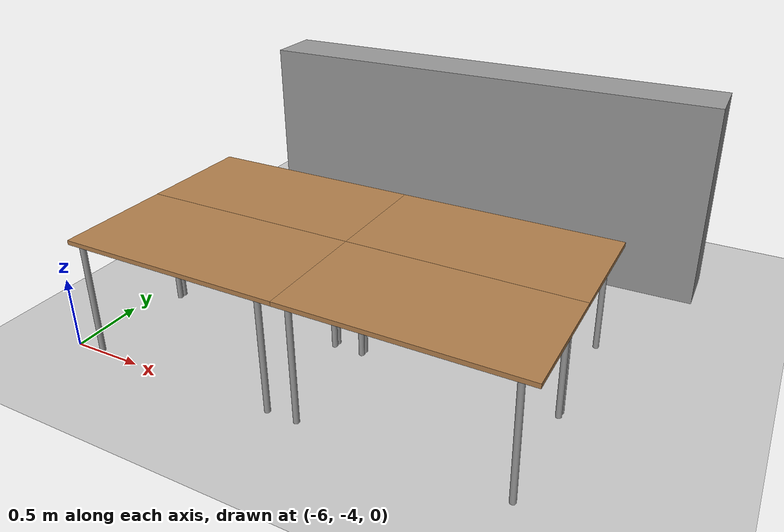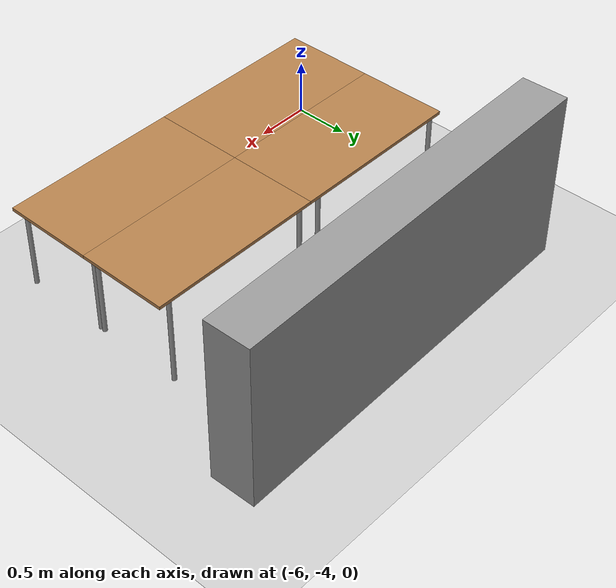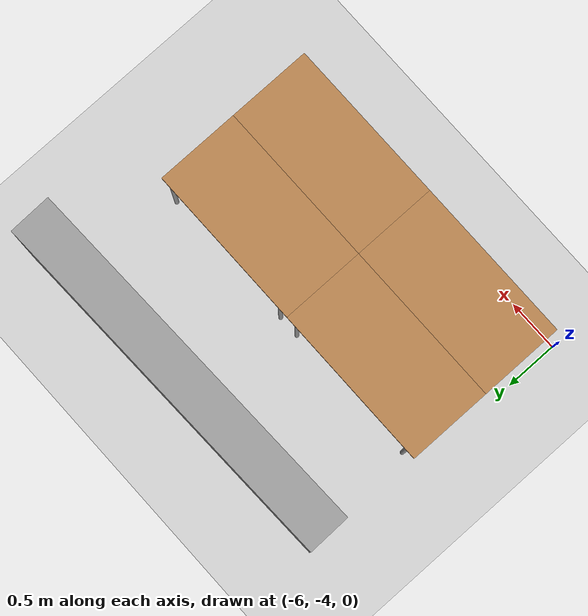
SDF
<sdf version="1.6">
 <world name="default">
  <model name="ground_plane">
   <static>1</static>
   <link name="link">
    <collision name="collision">
     <geometry><plane><normal>0 0 1</normal><size>100 100</size></plane></geometry>
     <surface><friction><ode><mu>100</mu><mu2>50</mu2></ode></friction></surface>
    </collision>
    <visual name="visual">
     <cast_shadows>0</cast_shadows>
     <geometry><plane><normal>0 0 1</normal><size>100 100</size></plane></geometry>
     <material>
      <script><uri>file://media/materials/scripts/gazebo.material</uri><name>Gazebo/Grey</name></script>
     </material>
    </visual>
   </link>
  </model>
  <model name="tablealt_0_clone_24">
   <link name="link">
    <inertial>
     <mass>1</mass>
     <inertia><ixx>1</ixx><ixy>0</ixy><ixz>0</ixz><iyy>1</iyy><iyz>0</iyz><izz>1</izz></inertia>
    </inertial>
    <visual name="back_right_leg">
     <pose>-0.68 -0.38 0.4 0 -0 0</pose>
     <geometry><cylinder><radius>0.02</radius><length>0.8</length></cylinder></geometry>
     <material>
      <script><uri>file://media/materials/scripts/gazebo.material</uri><name>Gazebo/Grey</name></script>
      <shader type="pixel"><normal_map>__default__</normal_map></shader>
      <ambient>0.3 0.3 0.3 1</ambient>
      <diffuse>0.7 0.7 0.7 1</diffuse>
      <specular>0.01 0.01 0.01 1</specular>
      <emissive>0 0 0 1</emissive>
     </material>
    </visual>
    <visual name="back_left_leg">
     <pose>-0.68 0.38 0.4 0 -0 0</pose>
     <geometry><cylinder><radius>0.02</radius><length>0.8</length></cylinder></geometry>
     <material>
      <script><uri>file://media/materials/scripts/gazebo.material</uri><name>Gazebo/Grey</name></script>
      <shader type="pixel"><normal_map>__default__</normal_map></shader>
      <ambient>0.3 0.3 0.3 1</ambient>
      <diffuse>0.7 0.7 0.7 1</diffuse>
      <specular>0.01 0.01 0.01 1</specular>
      <emissive>0 0 0 1</emissive>
     </material>
    </visual>
    <visual name="visual1">
     <pose>0 0 0.8 0 -0 0</pose>
     <geometry><box><size>1.57 0.8 0.03</size></box></geometry>
     <material>
      <script><uri>file://media/materials/scripts/gazebo.material</uri><name>Gazebo/Wood</name></script>
      <shader type="pixel"><normal_map>__default__</normal_map></shader>
      <ambient>0.92 0.92 0.68 1</ambient>
      <diffuse>1 1 1 1</diffuse>
      <specular>0.2 0.2 0.2 1</specular>
      <emissive>0 0 0 1</emissive>
     </material>
    </visual>
    <visual name="front_left_leg">
     <pose>0.68 0.38 0.4 0 -0 0</pose>
     <geometry><cylinder><radius>0.02</radius><length>0.8</length></cylinder></geometry>
     <material>
      <script><uri>file://media/materials/scripts/gazebo.material</uri><name>Gazebo/Grey</name></script>
      <shader type="pixel"><normal_map>__default__</normal_map></shader>
      <ambient>0.3 0.3 0.3 1</ambient>
      <diffuse>0.7 0.7 0.7 1</diffuse>
      <specular>0.01 0.01 0.01 1</specular>
      <emissive>0 0 0 1</emissive>
     </material>
    </visual>
    <visual name="front_right_leg">
     <pose>0.68 -0.38 0.4 0 -0 0</pose>
     <geometry><cylinder><radius>0.02</radius><length>0.8</length></cylinder></geometry>
     <material>
      <script><uri>file://media/materials/scripts/gazebo.material</uri><name>Gazebo/Grey</name></script>
      <shader type="pixel"><normal_map>__default__</normal_map></shader>
      <ambient>0.3 0.3 0.3 1</ambient>
      <diffuse>0.7 0.7 0.7 1</diffuse>
      <specular>0.01 0.01 0.01 1</specular>
      <emissive>0 0 0 1</emissive>
     </material>
    </visual>
    <collision name="front_right_leg">
     <pose>0.68 -0.38 0.4 0 -0 0</pose>
     <geometry><cylinder><radius>0.02</radius><length>0.8</length></cylinder></geometry>
     <surface>
      <friction>
       <ode><mu>1</mu><mu2>1</mu2><fdir1>0 0 0</fdir1><slip1>0</slip1><slip2>0</slip2></ode>
       <torsional>
        <coefficient>1</coefficient>
        <patch_radius>0</patch_radius>
        <surface_radius>0</surface_radius>
        <use_patch_radius>1</use_patch_radius>
        <ode><slip>0</slip></ode>
       </torsional>
      </friction>
      <bounce><restitution_coefficient>0</restitution_coefficient><threshold>1e+06</threshold></bounce>
      <contact>
       <collide_without_contact>0</collide_without_contact>
       <collide_without_contact_bitmask>1</collide_without_contact_bitmask>
       <collide_bitmask>1</collide_bitmask>
       <ode>
        <soft_cfm>0</soft_cfm>
        <soft_erp>0.2</soft_erp>
        <kp>1e+13</kp>
        <kd>1</kd>
        <max_vel>0.01</max_vel>
        <min_depth>0</min_depth>
       </ode>
       <bullet>
        <split_impulse>1</split_impulse>
        <split_impulse_penetration_threshold>-0.01</split_impulse_penetration_threshold>
        <soft_cfm>0</soft_cfm>
        <soft_erp>0.2</soft_erp>
        <kp>1e+13</kp>
        <kd>1</kd>
       </bullet>
      </contact>
     </surface>
    </collision>
    <collision name="surface">
     <pose>0 0 0.8 0 -0 0</pose>
     <geometry><box><size>1.5 0.8 0.03</size></box></geometry>
     <surface>
      <friction>
       <ode><mu>0.6</mu><mu2>0.6</mu2><fdir1>0 0 0</fdir1><slip1>0</slip1><slip2>0</slip2></ode>
       <torsional>
        <coefficient>1</coefficient>
        <patch_radius>0</patch_radius>
        <surface_radius>0</surface_radius>
        <use_patch_radius>1</use_patch_radius>
        <ode><slip>0</slip></ode>
       </torsional>
      </friction>
      <bounce><restitution_coefficient>0</restitution_coefficient><threshold>1e+06</threshold></bounce>
      <contact>
       <collide_without_contact>0</collide_without_contact>
       <collide_without_contact_bitmask>1</collide_without_contact_bitmask>
       <collide_bitmask>1</collide_bitmask>
       <ode>
        <soft_cfm>0</soft_cfm>
        <soft_erp>0.2</soft_erp>
        <kp>1e+13</kp>
        <kd>1</kd>
        <max_vel>0.01</max_vel>
        <min_depth>0</min_depth>
       </ode>
       <bullet>
        <split_impulse>1</split_impulse>
        <split_impulse_penetration_threshold>-0.01</split_impulse_penetration_threshold>
        <soft_cfm>0</soft_cfm>
        <soft_erp>0.2</soft_erp>
        <kp>1e+13</kp>
        <kd>1</kd>
       </bullet>
      </contact>
     </surface>
    </collision>
    <collision name="front_left_leg">
     <pose>0.68 0.38 0.4 0 -0 0</pose>
     <geometry><cylinder><radius>0.02</radius><length>0.8</length></cylinder></geometry>
     <surface>
      <friction>
       <ode><mu>1</mu><mu2>1</mu2><fdir1>0 0 0</fdir1><slip1>0</slip1><slip2>0</slip2></ode>
       <torsional>
        <coefficient>1</coefficient>
        <patch_radius>0</patch_radius>
        <surface_radius>0</surface_radius>
        <use_patch_radius>1</use_patch_radius>
        <ode><slip>0</slip></ode>
       </torsional>
      </friction>
      <bounce><restitution_coefficient>0</restitution_coefficient><threshold>1e+06</threshold></bounce>
      <contact>
       <collide_without_contact>0</collide_without_contact>
       <collide_without_contact_bitmask>1</collide_without_contact_bitmask>
       <collide_bitmask>1</collide_bitmask>
       <ode>
        <soft_cfm>0</soft_cfm>
        <soft_erp>0.2</soft_erp>
        <kp>1e+13</kp>
        <kd>1</kd>
        <max_vel>0.01</max_vel>
        <min_depth>0</min_depth>
       </ode>
       <bullet>
        <split_impulse>1</split_impulse>
        <split_impulse_penetration_threshold>-0.01</split_impulse_penetration_threshold>
        <soft_cfm>0</soft_cfm>
        <soft_erp>0.2</soft_erp>
        <kp>1e+13</kp>
        <kd>1</kd>
       </bullet>
      </contact>
     </surface>
    </collision>
    <collision name="back_left_leg">
     <pose>-0.68 0.38 0.4 0 -0 0</pose>
     <geometry><cylinder><radius>0.02</radius><length>0.8</length></cylinder></geometry>
     <surface>
      <friction>
       <ode><mu>1</mu><mu2>1</mu2><fdir1>0 0 0</fdir1><slip1>0</slip1><slip2>0</slip2></ode>
       <torsional>
        <coefficient>1</coefficient>
        <patch_radius>0</patch_radius>
        <surface_radius>0</surface_radius>
        <use_patch_radius>1</use_patch_radius>
        <ode><slip>0</slip></ode>
       </torsional>
      </friction>
      <bounce><restitution_coefficient>0</restitution_coefficient><threshold>1e+06</threshold></bounce>
      <contact>
       <collide_without_contact>0</collide_without_contact>
       <collide_without_contact_bitmask>1</collide_without_contact_bitmask>
       <collide_bitmask>1</collide_bitmask>
       <ode>
        <soft_cfm>0</soft_cfm>
        <soft_erp>0.2</soft_erp>
        <kp>1e+13</kp>
        <kd>1</kd>
        <max_vel>0.01</max_vel>
        <min_depth>0</min_depth>
       </ode>
       <bullet>
        <split_impulse>1</split_impulse>
        <split_impulse_penetration_threshold>-0.01</split_impulse_penetration_threshold>
        <soft_cfm>0</soft_cfm>
        <soft_erp>0.2</soft_erp>
        <kp>1e+13</kp>
        <kd>1</kd>
       </bullet>
      </contact>
     </surface>
    </collision>
    <collision name="back_right_leg">
     <pose>-0.68 -0.38 0.4 0 -0 0</pose>
     <geometry><cylinder><radius>0.02</radius><length>0.8</length></cylinder></geometry>
     <surface>
      <friction>
       <ode><mu>1</mu><mu2>1</mu2><fdir1>0 0 0</fdir1><slip1>0</slip1><slip2>0</slip2></ode>
       <torsional>
        <coefficient>1</coefficient>
        <patch_radius>0</patch_radius>
        <surface_radius>0</surface_radius>
        <use_patch_radius>1</use_patch_radius>
        <ode><slip>0</slip></ode>
       </torsional>
      </friction>
      <bounce><restitution_coefficient>0</restitution_coefficient><threshold>1e+06</threshold></bounce>
      <contact>
       <collide_without_contact>0</collide_without_contact>
       <collide_without_contact_bitmask>1</collide_without_contact_bitmask>
       <collide_bitmask>1</collide_bitmask>
       <ode>
        <soft_cfm>0</soft_cfm>
        <soft_erp>0.2</soft_erp>
        <kp>1e+13</kp>
        <kd>1</kd>
        <max_vel>0.01</max_vel>
        <min_depth>0</min_depth>
       </ode>
       <bullet>
        <split_impulse>1</split_impulse>
        <split_impulse_penetration_threshold>-0.01</split_impulse_penetration_threshold>
        <soft_cfm>0</soft_cfm>
        <soft_erp>0.2</soft_erp>
        <kp>1e+13</kp>
        <kd>1</kd>
       </bullet>
      </contact>
     </surface>
    </collision>
   </link>
   <static>1</static>
   <pose>-5.13 -2.8 0 0 -0 0</pose>
  </model>
  <model name="tablealt_0_clone_25">
   <link name="link">
    <inertial>
     <mass>1</mass>
     <inertia><ixx>1</ixx><ixy>0</ixy><ixz>0</ixz><iyy>1</iyy><iyz>0</iyz><izz>1</izz></inertia>
    </inertial>
    <visual name="back_right_leg">
     <pose>-0.68 -0.38 0.4 0 -0 0</pose>
     <geometry><cylinder><radius>0.02</radius><length>0.8</length></cylinder></geometry>
     <material>
      <script><uri>file://media/materials/scripts/gazebo.material</uri><name>Gazebo/Grey</name></script>
      <shader type="pixel"><normal_map>__default__</normal_map></shader>
      <ambient>0.3 0.3 0.3 1</ambient>
      <diffuse>0.7 0.7 0.7 1</diffuse>
      <specular>0.01 0.01 0.01 1</specular>
      <emissive>0 0 0 1</emissive>
     </material>
    </visual>
    <visual name="back_left_leg">
     <pose>-0.68 0.38 0.4 0 -0 0</pose>
     <geometry><cylinder><radius>0.02</radius><length>0.8</length></cylinder></geometry>
     <material>
      <script><uri>file://media/materials/scripts/gazebo.material</uri><name>Gazebo/Grey</name></script>
      <shader type="pixel"><normal_map>__default__</normal_map></shader>
      <ambient>0.3 0.3 0.3 1</ambient>
      <diffuse>0.7 0.7 0.7 1</diffuse>
      <specular>0.01 0.01 0.01 1</specular>
      <emissive>0 0 0 1</emissive>
     </material>
    </visual>
    <visual name="visual1">
     <pose>0 0 0.8 0 -0 0</pose>
     <geometry><box><size>1.57 0.8 0.03</size></box></geometry>
     <material>
      <script><uri>file://media/materials/scripts/gazebo.material</uri><name>Gazebo/Wood</name></script>
      <shader type="pixel"><normal_map>__default__</normal_map></shader>
      <ambient>0.92 0.92 0.68 1</ambient>
      <diffuse>1 1 1 1</diffuse>
      <specular>0.2 0.2 0.2 1</specular>
      <emissive>0 0 0 1</emissive>
     </material>
    </visual>
    <visual name="front_left_leg">
     <pose>0.68 0.38 0.4 0 -0 0</pose>
     <geometry><cylinder><radius>0.02</radius><length>0.8</length></cylinder></geometry>
     <material>
      <script><uri>file://media/materials/scripts/gazebo.material</uri><name>Gazebo/Grey</name></script>
      <shader type="pixel"><normal_map>__default__</normal_map></shader>
      <ambient>0.3 0.3 0.3 1</ambient>
      <diffuse>0.7 0.7 0.7 1</diffuse>
      <specular>0.01 0.01 0.01 1</specular>
      <emissive>0 0 0 1</emissive>
     </material>
    </visual>
    <visual name="front_right_leg">
     <pose>0.68 -0.38 0.4 0 -0 0</pose>
     <geometry><cylinder><radius>0.02</radius><length>0.8</length></cylinder></geometry>
     <material>
      <script><uri>file://media/materials/scripts/gazebo.material</uri><name>Gazebo/Grey</name></script>
      <shader type="pixel"><normal_map>__default__</normal_map></shader>
      <ambient>0.3 0.3 0.3 1</ambient>
      <diffuse>0.7 0.7 0.7 1</diffuse>
      <specular>0.01 0.01 0.01 1</specular>
      <emissive>0 0 0 1</emissive>
     </material>
    </visual>
    <collision name="front_right_leg">
     <pose>0.68 -0.38 0.4 0 -0 0</pose>
     <geometry><cylinder><radius>0.02</radius><length>0.8</length></cylinder></geometry>
     <surface>
      <friction>
       <ode><mu>1</mu><mu2>1</mu2><fdir1>0 0 0</fdir1><slip1>0</slip1><slip2>0</slip2></ode>
       <torsional>
        <coefficient>1</coefficient>
        <patch_radius>0</patch_radius>
        <surface_radius>0</surface_radius>
        <use_patch_radius>1</use_patch_radius>
        <ode><slip>0</slip></ode>
       </torsional>
      </friction>
      <bounce><restitution_coefficient>0</restitution_coefficient><threshold>1e+06</threshold></bounce>
      <contact>
       <collide_without_contact>0</collide_without_contact>
       <collide_without_contact_bitmask>1</collide_without_contact_bitmask>
       <collide_bitmask>1</collide_bitmask>
       <ode>
        <soft_cfm>0</soft_cfm>
        <soft_erp>0.2</soft_erp>
        <kp>1e+13</kp>
        <kd>1</kd>
        <max_vel>0.01</max_vel>
        <min_depth>0</min_depth>
       </ode>
       <bullet>
        <split_impulse>1</split_impulse>
        <split_impulse_penetration_threshold>-0.01</split_impulse_penetration_threshold>
        <soft_cfm>0</soft_cfm>
        <soft_erp>0.2</soft_erp>
        <kp>1e+13</kp>
        <kd>1</kd>
       </bullet>
      </contact>
     </surface>
    </collision>
    <collision name="surface">
     <pose>0 0 0.8 0 -0 0</pose>
     <geometry><box><size>1.5 0.8 0.03</size></box></geometry>
     <surface>
      <friction>
       <ode><mu>0.6</mu><mu2>0.6</mu2><fdir1>0 0 0</fdir1><slip1>0</slip1><slip2>0</slip2></ode>
       <torsional>
        <coefficient>1</coefficient>
        <patch_radius>0</patch_radius>
        <surface_radius>0</surface_radius>
        <use_patch_radius>1</use_patch_radius>
        <ode><slip>0</slip></ode>
       </torsional>
      </friction>
      <bounce><restitution_coefficient>0</restitution_coefficient><threshold>1e+06</threshold></bounce>
      <contact>
       <collide_without_contact>0</collide_without_contact>
       <collide_without_contact_bitmask>1</collide_without_contact_bitmask>
       <collide_bitmask>1</collide_bitmask>
       <ode>
        <soft_cfm>0</soft_cfm>
        <soft_erp>0.2</soft_erp>
        <kp>1e+13</kp>
        <kd>1</kd>
        <max_vel>0.01</max_vel>
        <min_depth>0</min_depth>
       </ode>
       <bullet>
        <split_impulse>1</split_impulse>
        <split_impulse_penetration_threshold>-0.01</split_impulse_penetration_threshold>
        <soft_cfm>0</soft_cfm>
        <soft_erp>0.2</soft_erp>
        <kp>1e+13</kp>
        <kd>1</kd>
       </bullet>
      </contact>
     </surface>
    </collision>
    <collision name="front_left_leg">
     <pose>0.68 0.38 0.4 0 -0 0</pose>
     <geometry><cylinder><radius>0.02</radius><length>0.8</length></cylinder></geometry>
     <surface>
      <friction>
       <ode><mu>1</mu><mu2>1</mu2><fdir1>0 0 0</fdir1><slip1>0</slip1><slip2>0</slip2></ode>
       <torsional>
        <coefficient>1</coefficient>
        <patch_radius>0</patch_radius>
        <surface_radius>0</surface_radius>
        <use_patch_radius>1</use_patch_radius>
        <ode><slip>0</slip></ode>
       </torsional>
      </friction>
      <bounce><restitution_coefficient>0</restitution_coefficient><threshold>1e+06</threshold></bounce>
      <contact>
       <collide_without_contact>0</collide_without_contact>
       <collide_without_contact_bitmask>1</collide_without_contact_bitmask>
       <collide_bitmask>1</collide_bitmask>
       <ode>
        <soft_cfm>0</soft_cfm>
        <soft_erp>0.2</soft_erp>
        <kp>1e+13</kp>
        <kd>1</kd>
        <max_vel>0.01</max_vel>
        <min_depth>0</min_depth>
       </ode>
       <bullet>
        <split_impulse>1</split_impulse>
        <split_impulse_penetration_threshold>-0.01</split_impulse_penetration_threshold>
        <soft_cfm>0</soft_cfm>
        <soft_erp>0.2</soft_erp>
        <kp>1e+13</kp>
        <kd>1</kd>
       </bullet>
      </contact>
     </surface>
    </collision>
    <collision name="back_left_leg">
     <pose>-0.68 0.38 0.4 0 -0 0</pose>
     <geometry><cylinder><radius>0.02</radius><length>0.8</length></cylinder></geometry>
     <surface>
      <friction>
       <ode><mu>1</mu><mu2>1</mu2><fdir1>0 0 0</fdir1><slip1>0</slip1><slip2>0</slip2></ode>
       <torsional>
        <coefficient>1</coefficient>
        <patch_radius>0</patch_radius>
        <surface_radius>0</surface_radius>
        <use_patch_radius>1</use_patch_radius>
        <ode><slip>0</slip></ode>
       </torsional>
      </friction>
      <bounce><restitution_coefficient>0</restitution_coefficient><threshold>1e+06</threshold></bounce>
      <contact>
       <collide_without_contact>0</collide_without_contact>
       <collide_without_contact_bitmask>1</collide_without_contact_bitmask>
       <collide_bitmask>1</collide_bitmask>
       <ode>
        <soft_cfm>0</soft_cfm>
        <soft_erp>0.2</soft_erp>
        <kp>1e+13</kp>
        <kd>1</kd>
        <max_vel>0.01</max_vel>
        <min_depth>0</min_depth>
       </ode>
       <bullet>
        <split_impulse>1</split_impulse>
        <split_impulse_penetration_threshold>-0.01</split_impulse_penetration_threshold>
        <soft_cfm>0</soft_cfm>
        <soft_erp>0.2</soft_erp>
        <kp>1e+13</kp>
        <kd>1</kd>
       </bullet>
      </contact>
     </surface>
    </collision>
    <collision name="back_right_leg">
     <pose>-0.68 -0.38 0.4 0 -0 0</pose>
     <geometry><cylinder><radius>0.02</radius><length>0.8</length></cylinder></geometry>
     <surface>
      <friction>
       <ode><mu>1</mu><mu2>1</mu2><fdir1>0 0 0</fdir1><slip1>0</slip1><slip2>0</slip2></ode>
       <torsional>
        <coefficient>1</coefficient>
        <patch_radius>0</patch_radius>
        <surface_radius>0</surface_radius>
        <use_patch_radius>1</use_patch_radius>
        <ode><slip>0</slip></ode>
       </torsional>
      </friction>
      <bounce><restitution_coefficient>0</restitution_coefficient><threshold>1e+06</threshold></bounce>
      <contact>
       <collide_without_contact>0</collide_without_contact>
       <collide_without_contact_bitmask>1</collide_without_contact_bitmask>
       <collide_bitmask>1</collide_bitmask>
       <ode>
        <soft_cfm>0</soft_cfm>
        <soft_erp>0.2</soft_erp>
        <kp>1e+13</kp>
        <kd>1</kd>
        <max_vel>0.01</max_vel>
        <min_depth>0</min_depth>
       </ode>
       <bullet>
        <split_impulse>1</split_impulse>
        <split_impulse_penetration_threshold>-0.01</split_impulse_penetration_threshold>
        <soft_cfm>0</soft_cfm>
        <soft_erp>0.2</soft_erp>
        <kp>1e+13</kp>
        <kd>1</kd>
       </bullet>
      </contact>
     </surface>
    </collision>
   </link>
   <static>1</static>
   <pose>-3.56 -2.8 0 0 -0 0</pose>
  </model>
  <model name="tablealt_0_clone_27">
   <link name="link">
    <inertial>
     <mass>1</mass>
     <inertia><ixx>1</ixx><ixy>0</ixy><ixz>0</ixz><iyy>1</iyy><iyz>0</iyz><izz>1</izz></inertia>
    </inertial>
    <visual name="back_right_leg">
     <pose>-0.68 -0.38 0.4 0 -0 0</pose>
     <geometry><cylinder><radius>0.02</radius><length>0.8</length></cylinder></geometry>
     <material>
      <script><uri>file://media/materials/scripts/gazebo.material</uri><name>Gazebo/Grey</name></script>
      <shader type="pixel"><normal_map>__default__</normal_map></shader>
      <ambient>0.3 0.3 0.3 1</ambient>
      <diffuse>0.7 0.7 0.7 1</diffuse>
      <specular>0.01 0.01 0.01 1</specular>
      <emissive>0 0 0 1</emissive>
     </material>
    </visual>
    <visual name="back_left_leg">
     <pose>-0.68 0.38 0.4 0 -0 0</pose>
     <geometry><cylinder><radius>0.02</radius><length>0.8</length></cylinder></geometry>
     <material>
      <script><uri>file://media/materials/scripts/gazebo.material</uri><name>Gazebo/Grey</name></script>
      <shader type="pixel"><normal_map>__default__</normal_map></shader>
      <ambient>0.3 0.3 0.3 1</ambient>
      <diffuse>0.7 0.7 0.7 1</diffuse>
      <specular>0.01 0.01 0.01 1</specular>
      <emissive>0 0 0 1</emissive>
     </material>
    </visual>
    <visual name="visual1">
     <pose>0 0 0.8 0 -0 0</pose>
     <geometry><box><size>1.57 0.8 0.03</size></box></geometry>
     <material>
      <script><uri>file://media/materials/scripts/gazebo.material</uri><name>Gazebo/Wood</name></script>
      <shader type="pixel"><normal_map>__default__</normal_map></shader>
      <ambient>0.92 0.92 0.68 1</ambient>
      <diffuse>1 1 1 1</diffuse>
      <specular>0.2 0.2 0.2 1</specular>
      <emissive>0 0 0 1</emissive>
     </material>
    </visual>
    <visual name="front_left_leg">
     <pose>0.68 0.38 0.4 0 -0 0</pose>
     <geometry><cylinder><radius>0.02</radius><length>0.8</length></cylinder></geometry>
     <material>
      <script><uri>file://media/materials/scripts/gazebo.material</uri><name>Gazebo/Grey</name></script>
      <shader type="pixel"><normal_map>__default__</normal_map></shader>
      <ambient>0.3 0.3 0.3 1</ambient>
      <diffuse>0.7 0.7 0.7 1</diffuse>
      <specular>0.01 0.01 0.01 1</specular>
      <emissive>0 0 0 1</emissive>
     </material>
    </visual>
    <visual name="front_right_leg">
     <pose>0.68 -0.38 0.4 0 -0 0</pose>
     <geometry><cylinder><radius>0.02</radius><length>0.8</length></cylinder></geometry>
     <material>
      <script><uri>file://media/materials/scripts/gazebo.material</uri><name>Gazebo/Grey</name></script>
      <shader type="pixel"><normal_map>__default__</normal_map></shader>
      <ambient>0.3 0.3 0.3 1</ambient>
      <diffuse>0.7 0.7 0.7 1</diffuse>
      <specular>0.01 0.01 0.01 1</specular>
      <emissive>0 0 0 1</emissive>
     </material>
    </visual>
    <collision name="front_right_leg">
     <pose>0.68 -0.38 0.4 0 -0 0</pose>
     <geometry><cylinder><radius>0.02</radius><length>0.8</length></cylinder></geometry>
     <surface>
      <friction>
       <ode><mu>1</mu><mu2>1</mu2><fdir1>0 0 0</fdir1><slip1>0</slip1><slip2>0</slip2></ode>
       <torsional>
        <coefficient>1</coefficient>
        <patch_radius>0</patch_radius>
        <surface_radius>0</surface_radius>
        <use_patch_radius>1</use_patch_radius>
        <ode><slip>0</slip></ode>
       </torsional>
      </friction>
      <bounce><restitution_coefficient>0</restitution_coefficient><threshold>1e+06</threshold></bounce>
      <contact>
       <collide_without_contact>0</collide_without_contact>
       <collide_without_contact_bitmask>1</collide_without_contact_bitmask>
       <collide_bitmask>1</collide_bitmask>
       <ode>
        <soft_cfm>0</soft_cfm>
        <soft_erp>0.2</soft_erp>
        <kp>1e+13</kp>
        <kd>1</kd>
        <max_vel>0.01</max_vel>
        <min_depth>0</min_depth>
       </ode>
       <bullet>
        <split_impulse>1</split_impulse>
        <split_impulse_penetration_threshold>-0.01</split_impulse_penetration_threshold>
        <soft_cfm>0</soft_cfm>
        <soft_erp>0.2</soft_erp>
        <kp>1e+13</kp>
        <kd>1</kd>
       </bullet>
      </contact>
     </surface>
    </collision>
    <collision name="surface">
     <pose>0 0 0.8 0 -0 0</pose>
     <geometry><box><size>1.5 0.8 0.03</size></box></geometry>
     <surface>
      <friction>
       <ode><mu>0.6</mu><mu2>0.6</mu2><fdir1>0 0 0</fdir1><slip1>0</slip1><slip2>0</slip2></ode>
       <torsional>
        <coefficient>1</coefficient>
        <patch_radius>0</patch_radius>
        <surface_radius>0</surface_radius>
        <use_patch_radius>1</use_patch_radius>
        <ode><slip>0</slip></ode>
       </torsional>
      </friction>
      <bounce><restitution_coefficient>0</restitution_coefficient><threshold>1e+06</threshold></bounce>
      <contact>
       <collide_without_contact>0</collide_without_contact>
       <collide_without_contact_bitmask>1</collide_without_contact_bitmask>
       <collide_bitmask>1</collide_bitmask>
       <ode>
        <soft_cfm>0</soft_cfm>
        <soft_erp>0.2</soft_erp>
        <kp>1e+13</kp>
        <kd>1</kd>
        <max_vel>0.01</max_vel>
        <min_depth>0</min_depth>
       </ode>
       <bullet>
        <split_impulse>1</split_impulse>
        <split_impulse_penetration_threshold>-0.01</split_impulse_penetration_threshold>
        <soft_cfm>0</soft_cfm>
        <soft_erp>0.2</soft_erp>
        <kp>1e+13</kp>
        <kd>1</kd>
       </bullet>
      </contact>
     </surface>
    </collision>
    <collision name="front_left_leg">
     <pose>0.68 0.38 0.4 0 -0 0</pose>
     <geometry><cylinder><radius>0.02</radius><length>0.8</length></cylinder></geometry>
     <surface>
      <friction>
       <ode><mu>1</mu><mu2>1</mu2><fdir1>0 0 0</fdir1><slip1>0</slip1><slip2>0</slip2></ode>
       <torsional>
        <coefficient>1</coefficient>
        <patch_radius>0</patch_radius>
        <surface_radius>0</surface_radius>
        <use_patch_radius>1</use_patch_radius>
        <ode><slip>0</slip></ode>
       </torsional>
      </friction>
      <bounce><restitution_coefficient>0</restitution_coefficient><threshold>1e+06</threshold></bounce>
      <contact>
       <collide_without_contact>0</collide_without_contact>
       <collide_without_contact_bitmask>1</collide_without_contact_bitmask>
       <collide_bitmask>1</collide_bitmask>
       <ode>
        <soft_cfm>0</soft_cfm>
        <soft_erp>0.2</soft_erp>
        <kp>1e+13</kp>
        <kd>1</kd>
        <max_vel>0.01</max_vel>
        <min_depth>0</min_depth>
       </ode>
       <bullet>
        <split_impulse>1</split_impulse>
        <split_impulse_penetration_threshold>-0.01</split_impulse_penetration_threshold>
        <soft_cfm>0</soft_cfm>
        <soft_erp>0.2</soft_erp>
        <kp>1e+13</kp>
        <kd>1</kd>
       </bullet>
      </contact>
     </surface>
    </collision>
    <collision name="back_left_leg">
     <pose>-0.68 0.38 0.4 0 -0 0</pose>
     <geometry><cylinder><radius>0.02</radius><length>0.8</length></cylinder></geometry>
     <surface>
      <friction>
       <ode><mu>1</mu><mu2>1</mu2><fdir1>0 0 0</fdir1><slip1>0</slip1><slip2>0</slip2></ode>
       <torsional>
        <coefficient>1</coefficient>
        <patch_radius>0</patch_radius>
        <surface_radius>0</surface_radius>
        <use_patch_radius>1</use_patch_radius>
        <ode><slip>0</slip></ode>
       </torsional>
      </friction>
      <bounce><restitution_coefficient>0</restitution_coefficient><threshold>1e+06</threshold></bounce>
      <contact>
       <collide_without_contact>0</collide_without_contact>
       <collide_without_contact_bitmask>1</collide_without_contact_bitmask>
       <collide_bitmask>1</collide_bitmask>
       <ode>
        <soft_cfm>0</soft_cfm>
        <soft_erp>0.2</soft_erp>
        <kp>1e+13</kp>
        <kd>1</kd>
        <max_vel>0.01</max_vel>
        <min_depth>0</min_depth>
       </ode>
       <bullet>
        <split_impulse>1</split_impulse>
        <split_impulse_penetration_threshold>-0.01</split_impulse_penetration_threshold>
        <soft_cfm>0</soft_cfm>
        <soft_erp>0.2</soft_erp>
        <kp>1e+13</kp>
        <kd>1</kd>
       </bullet>
      </contact>
     </surface>
    </collision>
    <collision name="back_right_leg">
     <pose>-0.68 -0.38 0.4 0 -0 0</pose>
     <geometry><cylinder><radius>0.02</radius><length>0.8</length></cylinder></geometry>
     <surface>
      <friction>
       <ode><mu>1</mu><mu2>1</mu2><fdir1>0 0 0</fdir1><slip1>0</slip1><slip2>0</slip2></ode>
       <torsional>
        <coefficient>1</coefficient>
        <patch_radius>0</patch_radius>
        <surface_radius>0</surface_radius>
        <use_patch_radius>1</use_patch_radius>
        <ode><slip>0</slip></ode>
       </torsional>
      </friction>
      <bounce><restitution_coefficient>0</restitution_coefficient><threshold>1e+06</threshold></bounce>
      <contact>
       <collide_without_contact>0</collide_without_contact>
       <collide_without_contact_bitmask>1</collide_without_contact_bitmask>
       <collide_bitmask>1</collide_bitmask>
       <ode>
        <soft_cfm>0</soft_cfm>
        <soft_erp>0.2</soft_erp>
        <kp>1e+13</kp>
        <kd>1</kd>
        <max_vel>0.01</max_vel>
        <min_depth>0</min_depth>
       </ode>
       <bullet>
        <split_impulse>1</split_impulse>
        <split_impulse_penetration_threshold>-0.01</split_impulse_penetration_threshold>
        <soft_cfm>0</soft_cfm>
        <soft_erp>0.2</soft_erp>
        <kp>1e+13</kp>
        <kd>1</kd>
       </bullet>
      </contact>
     </surface>
    </collision>
   </link>
   <static>1</static>
   <pose>-5.13 -3.6 0 0 -0 0</pose>
  </model>
  <model name="tablealt_0_clone_28">
   <link name="link">
    <inertial>
     <mass>1</mass>
     <inertia><ixx>1</ixx><ixy>0</ixy><ixz>0</ixz><iyy>1</iyy><iyz>0</iyz><izz>1</izz></inertia>
    </inertial>
    <visual name="back_right_leg">
     <pose>-0.68 -0.38 0.4 0 -0 0</pose>
     <geometry><cylinder><radius>0.02</radius><length>0.8</length></cylinder></geometry>
     <material>
      <script><uri>file://media/materials/scripts/gazebo.material</uri><name>Gazebo/Grey</name></script>
      <shader type="pixel"><normal_map>__default__</normal_map></shader>
      <ambient>0.3 0.3 0.3 1</ambient>
      <diffuse>0.7 0.7 0.7 1</diffuse>
      <specular>0.01 0.01 0.01 1</specular>
      <emissive>0 0 0 1</emissive>
     </material>
    </visual>
    <visual name="back_left_leg">
     <pose>-0.68 0.38 0.4 0 -0 0</pose>
     <geometry><cylinder><radius>0.02</radius><length>0.8</length></cylinder></geometry>
     <material>
      <script><uri>file://media/materials/scripts/gazebo.material</uri><name>Gazebo/Grey</name></script>
      <shader type="pixel"><normal_map>__default__</normal_map></shader>
      <ambient>0.3 0.3 0.3 1</ambient>
      <diffuse>0.7 0.7 0.7 1</diffuse>
      <specular>0.01 0.01 0.01 1</specular>
      <emissive>0 0 0 1</emissive>
     </material>
    </visual>
    <visual name="visual1">
     <pose>0 0 0.8 0 -0 0</pose>
     <geometry><box><size>1.57 0.8 0.03</size></box></geometry>
     <material>
      <script><uri>file://media/materials/scripts/gazebo.material</uri><name>Gazebo/Wood</name></script>
      <shader type="pixel"><normal_map>__default__</normal_map></shader>
      <ambient>0.92 0.92 0.68 1</ambient>
      <diffuse>1 1 1 1</diffuse>
      <specular>0.2 0.2 0.2 1</specular>
      <emissive>0 0 0 1</emissive>
     </material>
    </visual>
    <visual name="front_left_leg">
     <pose>0.68 0.38 0.4 0 -0 0</pose>
     <geometry><cylinder><radius>0.02</radius><length>0.8</length></cylinder></geometry>
     <material>
      <script><uri>file://media/materials/scripts/gazebo.material</uri><name>Gazebo/Grey</name></script>
      <shader type="pixel"><normal_map>__default__</normal_map></shader>
      <ambient>0.3 0.3 0.3 1</ambient>
      <diffuse>0.7 0.7 0.7 1</diffuse>
      <specular>0.01 0.01 0.01 1</specular>
      <emissive>0 0 0 1</emissive>
     </material>
    </visual>
    <visual name="front_right_leg">
     <pose>0.68 -0.38 0.4 0 -0 0</pose>
     <geometry><cylinder><radius>0.02</radius><length>0.8</length></cylinder></geometry>
     <material>
      <script><uri>file://media/materials/scripts/gazebo.material</uri><name>Gazebo/Grey</name></script>
      <shader type="pixel"><normal_map>__default__</normal_map></shader>
      <ambient>0.3 0.3 0.3 1</ambient>
      <diffuse>0.7 0.7 0.7 1</diffuse>
      <specular>0.01 0.01 0.01 1</specular>
      <emissive>0 0 0 1</emissive>
     </material>
    </visual>
    <collision name="front_right_leg">
     <pose>0.68 -0.38 0.4 0 -0 0</pose>
     <geometry><cylinder><radius>0.02</radius><length>0.8</length></cylinder></geometry>
     <surface>
      <friction>
       <ode><mu>1</mu><mu2>1</mu2><fdir1>0 0 0</fdir1><slip1>0</slip1><slip2>0</slip2></ode>
       <torsional>
        <coefficient>1</coefficient>
        <patch_radius>0</patch_radius>
        <surface_radius>0</surface_radius>
        <use_patch_radius>1</use_patch_radius>
        <ode><slip>0</slip></ode>
       </torsional>
      </friction>
      <bounce><restitution_coefficient>0</restitution_coefficient><threshold>1e+06</threshold></bounce>
      <contact>
       <collide_without_contact>0</collide_without_contact>
       <collide_without_contact_bitmask>1</collide_without_contact_bitmask>
       <collide_bitmask>1</collide_bitmask>
       <ode>
        <soft_cfm>0</soft_cfm>
        <soft_erp>0.2</soft_erp>
        <kp>1e+13</kp>
        <kd>1</kd>
        <max_vel>0.01</max_vel>
        <min_depth>0</min_depth>
       </ode>
       <bullet>
        <split_impulse>1</split_impulse>
        <split_impulse_penetration_threshold>-0.01</split_impulse_penetration_threshold>
        <soft_cfm>0</soft_cfm>
        <soft_erp>0.2</soft_erp>
        <kp>1e+13</kp>
        <kd>1</kd>
       </bullet>
      </contact>
     </surface>
    </collision>
    <collision name="surface">
     <pose>0 0 0.8 0 -0 0</pose>
     <geometry><box><size>1.5 0.8 0.03</size></box></geometry>
     <surface>
      <friction>
       <ode><mu>0.6</mu><mu2>0.6</mu2><fdir1>0 0 0</fdir1><slip1>0</slip1><slip2>0</slip2></ode>
       <torsional>
        <coefficient>1</coefficient>
        <patch_radius>0</patch_radius>
        <surface_radius>0</surface_radius>
        <use_patch_radius>1</use_patch_radius>
        <ode><slip>0</slip></ode>
       </torsional>
      </friction>
      <bounce><restitution_coefficient>0</restitution_coefficient><threshold>1e+06</threshold></bounce>
      <contact>
       <collide_without_contact>0</collide_without_contact>
       <collide_without_contact_bitmask>1</collide_without_contact_bitmask>
       <collide_bitmask>1</collide_bitmask>
       <ode>
        <soft_cfm>0</soft_cfm>
        <soft_erp>0.2</soft_erp>
        <kp>1e+13</kp>
        <kd>1</kd>
        <max_vel>0.01</max_vel>
        <min_depth>0</min_depth>
       </ode>
       <bullet>
        <split_impulse>1</split_impulse>
        <split_impulse_penetration_threshold>-0.01</split_impulse_penetration_threshold>
        <soft_cfm>0</soft_cfm>
        <soft_erp>0.2</soft_erp>
        <kp>1e+13</kp>
        <kd>1</kd>
       </bullet>
      </contact>
     </surface>
    </collision>
    <collision name="front_left_leg">
     <pose>0.68 0.38 0.4 0 -0 0</pose>
     <geometry><cylinder><radius>0.02</radius><length>0.8</length></cylinder></geometry>
     <surface>
      <friction>
       <ode><mu>1</mu><mu2>1</mu2><fdir1>0 0 0</fdir1><slip1>0</slip1><slip2>0</slip2></ode>
       <torsional>
        <coefficient>1</coefficient>
        <patch_radius>0</patch_radius>
        <surface_radius>0</surface_radius>
        <use_patch_radius>1</use_patch_radius>
        <ode><slip>0</slip></ode>
       </torsional>
      </friction>
      <bounce><restitution_coefficient>0</restitution_coefficient><threshold>1e+06</threshold></bounce>
      <contact>
       <collide_without_contact>0</collide_without_contact>
       <collide_without_contact_bitmask>1</collide_without_contact_bitmask>
       <collide_bitmask>1</collide_bitmask>
       <ode>
        <soft_cfm>0</soft_cfm>
        <soft_erp>0.2</soft_erp>
        <kp>1e+13</kp>
        <kd>1</kd>
        <max_vel>0.01</max_vel>
        <min_depth>0</min_depth>
       </ode>
       <bullet>
        <split_impulse>1</split_impulse>
        <split_impulse_penetration_threshold>-0.01</split_impulse_penetration_threshold>
        <soft_cfm>0</soft_cfm>
        <soft_erp>0.2</soft_erp>
        <kp>1e+13</kp>
        <kd>1</kd>
       </bullet>
      </contact>
     </surface>
    </collision>
    <collision name="back_left_leg">
     <pose>-0.68 0.38 0.4 0 -0 0</pose>
     <geometry><cylinder><radius>0.02</radius><length>0.8</length></cylinder></geometry>
     <surface>
      <friction>
       <ode><mu>1</mu><mu2>1</mu2><fdir1>0 0 0</fdir1><slip1>0</slip1><slip2>0</slip2></ode>
       <torsional>
        <coefficient>1</coefficient>
        <patch_radius>0</patch_radius>
        <surface_radius>0</surface_radius>
        <use_patch_radius>1</use_patch_radius>
        <ode><slip>0</slip></ode>
       </torsional>
      </friction>
      <bounce><restitution_coefficient>0</restitution_coefficient><threshold>1e+06</threshold></bounce>
      <contact>
       <collide_without_contact>0</collide_without_contact>
       <collide_without_contact_bitmask>1</collide_without_contact_bitmask>
       <collide_bitmask>1</collide_bitmask>
       <ode>
        <soft_cfm>0</soft_cfm>
        <soft_erp>0.2</soft_erp>
        <kp>1e+13</kp>
        <kd>1</kd>
        <max_vel>0.01</max_vel>
        <min_depth>0</min_depth>
       </ode>
       <bullet>
        <split_impulse>1</split_impulse>
        <split_impulse_penetration_threshold>-0.01</split_impulse_penetration_threshold>
        <soft_cfm>0</soft_cfm>
        <soft_erp>0.2</soft_erp>
        <kp>1e+13</kp>
        <kd>1</kd>
       </bullet>
      </contact>
     </surface>
    </collision>
    <collision name="back_right_leg">
     <pose>-0.68 -0.38 0.4 0 -0 0</pose>
     <geometry><cylinder><radius>0.02</radius><length>0.8</length></cylinder></geometry>
     <surface>
      <friction>
       <ode><mu>1</mu><mu2>1</mu2><fdir1>0 0 0</fdir1><slip1>0</slip1><slip2>0</slip2></ode>
       <torsional>
        <coefficient>1</coefficient>
        <patch_radius>0</patch_radius>
        <surface_radius>0</surface_radius>
        <use_patch_radius>1</use_patch_radius>
        <ode><slip>0</slip></ode>
       </torsional>
      </friction>
      <bounce><restitution_coefficient>0</restitution_coefficient><threshold>1e+06</threshold></bounce>
      <contact>
       <collide_without_contact>0</collide_without_contact>
       <collide_without_contact_bitmask>1</collide_without_contact_bitmask>
       <collide_bitmask>1</collide_bitmask>
       <ode>
        <soft_cfm>0</soft_cfm>
        <soft_erp>0.2</soft_erp>
        <kp>1e+13</kp>
        <kd>1</kd>
        <max_vel>0.01</max_vel>
        <min_depth>0</min_depth>
       </ode>
       <bullet>
        <split_impulse>1</split_impulse>
        <split_impulse_penetration_threshold>-0.01</split_impulse_penetration_threshold>
        <soft_cfm>0</soft_cfm>
        <soft_erp>0.2</soft_erp>
        <kp>1e+13</kp>
        <kd>1</kd>
       </bullet>
      </contact>
     </surface>
    </collision>
   </link>
   <static>1</static>
   <pose>-3.56 -3.6 0 0 -0 0</pose>
  </model>
  <model name="shelf">
   <link name="link_1">
    <inertial>
     <mass>1</mass>
     <inertia>
      <ixx>0.166667</ixx>
      <ixy>0</ixy>
      <ixz>0</ixz>
      <iyy>0.166667</iyy>
      <iyz>0</iyz>
      <izz>0.166667</izz>
     </inertia>
    </inertial>
    <visual name="visual">
     <geometry><box><size>3.5 0.4 1.5</size></box></geometry>
     <material>
      <lighting>1</lighting>
      <script><uri>file://media/materials/scripts/gazebo.material</uri><name>Gazebo/Grey</name></script>
      <shader type="pixel"><normal_map>__default__</normal_map></shader>
      <ambient>0.8 0.8 0.8 1</ambient>
      <diffuse>0.8 0.8 0.8 1</diffuse>
      <specular>0.8 0.8 0.8 1</specular>
      <emissive>0 0 0 1</emissive>
     </material>
    </visual>
    <collision name="collision">
     <geometry><box><size>3.5 0.4 1.5</size></box></geometry>
     <surface>
      <friction>
       <ode><mu>1</mu><mu2>1</mu2><fdir1>0 0 0</fdir1><slip1>0</slip1><slip2>0</slip2></ode>
       <torsional>
        <coefficient>1</coefficient>
        <patch_radius>0</patch_radius>
        <surface_radius>0</surface_radius>
        <use_patch_radius>1</use_patch_radius>
        <ode><slip>0</slip></ode>
       </torsional>
      </friction>
      <bounce><restitution_coefficient>0</restitution_coefficient><threshold>1e+06</threshold></bounce>
      <contact>
       <collide_without_contact>0</collide_without_contact>
       <collide_without_contact_bitmask>1</collide_without_contact_bitmask>
       <collide_bitmask>1</collide_bitmask>
       <ode>
        <soft_cfm>0</soft_cfm>
        <soft_erp>0.2</soft_erp>
        <kp>1e+13</kp>
        <kd>1</kd>
        <max_vel>0.01</max_vel>
        <min_depth>0</min_depth>
       </ode>
       <bullet>
        <split_impulse>1</split_impulse>
        <split_impulse_penetration_threshold>-0.01</split_impulse_penetration_threshold>
        <soft_cfm>0</soft_cfm>
        <soft_erp>0.2</soft_erp>
        <kp>1e+13</kp>
        <kd>1</kd>
       </bullet>
      </contact>
     </surface>
    </collision>
   </link>
   <static>0</static>
   <pose>-4.1612 -1.41012 0.749759 -4e-06 -0.000138 0.023932</pose>
  </model>
 </world>
</sdf>
